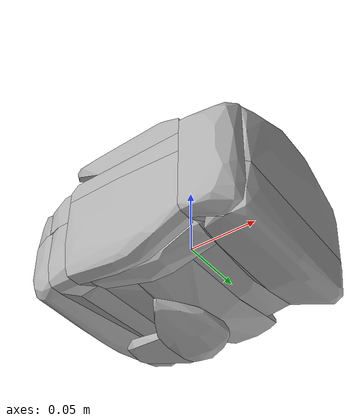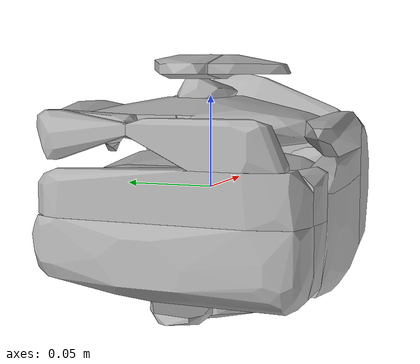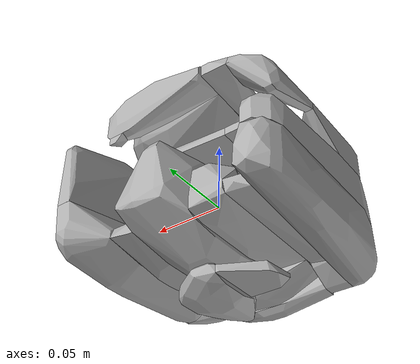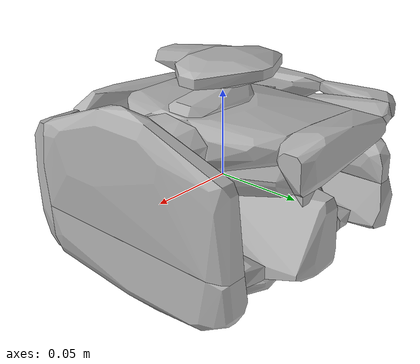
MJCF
<?xml version="1.0" ?>
<mujoco model="agod_23279">
  <asset>
    <material name="default_material" specular="0.5" shininess="0.25" rgba="0.7 0.7 0.7 1"/>
    <mesh name="convex_0_vis" file="visual/convex_0.obj" scale="1.0 1.0 1.0"/>
    <mesh name="convex_0_coll" file="collision/convex_0_coll.obj" scale="1.0 1.0 1.0"/>
    <mesh name="convex_1_vis" file="visual/convex_1.obj" scale="1.0 1.0 1.0"/>
    <mesh name="convex_1_coll" file="collision/convex_1_coll.obj" scale="1.0 1.0 1.0"/>
    <mesh name="convex_2_vis" file="visual/convex_2.obj" scale="1.0 1.0 1.0"/>
    <mesh name="convex_2_coll" file="collision/convex_2_coll.obj" scale="1.0 1.0 1.0"/>
    <mesh name="convex_3_vis" file="visual/convex_3.obj" scale="1.0 1.0 1.0"/>
    <mesh name="convex_3_coll" file="collision/convex_3_coll.obj" scale="1.0 1.0 1.0"/>
    <mesh name="convex_4_vis" file="visual/convex_4.obj" scale="1.0 1.0 1.0"/>
    <mesh name="convex_4_coll" file="collision/convex_4_coll.obj" scale="1.0 1.0 1.0"/>
    <mesh name="convex_5_vis" file="visual/convex_5.obj" scale="1.0 1.0 1.0"/>
    <mesh name="convex_5_coll" file="collision/convex_5_coll.obj" scale="1.0 1.0 1.0"/>
    <mesh name="convex_6_vis" file="visual/convex_6.obj" scale="1.0 1.0 1.0"/>
    <mesh name="convex_6_coll" file="collision/convex_6_coll.obj" scale="1.0 1.0 1.0"/>
    <mesh name="convex_7_vis" file="visual/convex_7.obj" scale="1.0 1.0 1.0"/>
    <mesh name="convex_7_coll" file="collision/convex_7_coll.obj" scale="1.0 1.0 1.0"/>
    <mesh name="convex_8_vis" file="visual/convex_8.obj" scale="1.0 1.0 1.0"/>
    <mesh name="convex_8_coll" file="collision/convex_8_coll.obj" scale="1.0 1.0 1.0"/>
    <mesh name="convex_9_vis" file="visual/convex_9.obj" scale="1.0 1.0 1.0"/>
    <mesh name="convex_9_coll" file="collision/convex_9_coll.obj" scale="1.0 1.0 1.0"/>
    <mesh name="convex_10_vis" file="visual/convex_10.obj" scale="1.0 1.0 1.0"/>
    <mesh name="convex_10_coll" file="collision/convex_10_coll.obj" scale="1.0 1.0 1.0"/>
    <mesh name="convex_11_vis" file="visual/convex_11.obj" scale="1.0 1.0 1.0"/>
    <mesh name="convex_11_coll" file="collision/convex_11_coll.obj" scale="1.0 1.0 1.0"/>
    <mesh name="convex_12_vis" file="visual/convex_12.obj" scale="1.0 1.0 1.0"/>
    <mesh name="convex_12_coll" file="collision/convex_12_coll.obj" scale="1.0 1.0 1.0"/>
    <mesh name="convex_13_vis" file="visual/convex_13.obj" scale="1.0 1.0 1.0"/>
    <mesh name="convex_13_coll" file="collision/convex_13_coll.obj" scale="1.0 1.0 1.0"/>
    <mesh name="convex_14_vis" file="visual/convex_14.obj" scale="1.0 1.0 1.0"/>
    <mesh name="convex_14_coll" file="collision/convex_14_coll.obj" scale="1.0 1.0 1.0"/>
    <mesh name="convex_15_vis" file="visual/convex_15.obj" scale="1.0 1.0 1.0"/>
    <mesh name="convex_15_coll" file="collision/convex_15_coll.obj" scale="1.0 1.0 1.0"/>
    <mesh name="convex_16_vis" file="visual/convex_16.obj" scale="1.0 1.0 1.0"/>
    <mesh name="convex_16_coll" file="collision/convex_16_coll.obj" scale="1.0 1.0 1.0"/>
    <mesh name="convex_17_vis" file="visual/convex_17.obj" scale="1.0 1.0 1.0"/>
    <mesh name="convex_17_coll" file="collision/convex_17_coll.obj" scale="1.0 1.0 1.0"/>
    <mesh name="convex_18_vis" file="visual/convex_18.obj" scale="1.0 1.0 1.0"/>
    <mesh name="convex_18_coll" file="collision/convex_18_coll.obj" scale="1.0 1.0 1.0"/>
    <mesh name="convex_19_vis" file="visual/convex_19.obj" scale="1.0 1.0 1.0"/>
    <mesh name="convex_19_coll" file="collision/convex_19_coll.obj" scale="1.0 1.0 1.0"/>
    <mesh name="convex_20_vis" file="visual/convex_20.obj" scale="1.0 1.0 1.0"/>
    <mesh name="convex_20_coll" file="collision/convex_20_coll.obj" scale="1.0 1.0 1.0"/>
    <mesh name="convex_21_vis" file="visual/convex_21.obj" scale="1.0 1.0 1.0"/>
    <mesh name="convex_21_coll" file="collision/convex_21_coll.obj" scale="1.0 1.0 1.0"/>
    <mesh name="convex_22_vis" file="visual/convex_22.obj" scale="1.0 1.0 1.0"/>
    <mesh name="convex_22_coll" file="collision/convex_22_coll.obj" scale="1.0 1.0 1.0"/>
    <mesh name="convex_23_vis" file="visual/convex_23.obj" scale="1.0 1.0 1.0"/>
    <mesh name="convex_23_coll" file="collision/convex_23_coll.obj" scale="1.0 1.0 1.0"/>
    <mesh name="convex_24_vis" file="visual/convex_24.obj" scale="1.0 1.0 1.0"/>
    <mesh name="convex_24_coll" file="collision/convex_24_coll.obj" scale="1.0 1.0 1.0"/>
    <mesh name="convex_25_vis" file="visual/convex_25.obj" scale="1.0 1.0 1.0"/>
    <mesh name="convex_25_coll" file="collision/convex_25_coll.obj" scale="1.0 1.0 1.0"/>
    <mesh name="convex_26_vis" file="visual/convex_26.obj" scale="1.0 1.0 1.0"/>
    <mesh name="convex_26_coll" file="collision/convex_26_coll.obj" scale="1.0 1.0 1.0"/>
    <mesh name="convex_27_vis" file="visual/convex_27.obj" scale="1.0 1.0 1.0"/>
    <mesh name="convex_27_coll" file="collision/convex_27_coll.obj" scale="1.0 1.0 1.0"/>
    <mesh name="convex_28_vis" file="visual/convex_28.obj" scale="1.0 1.0 1.0"/>
    <mesh name="convex_28_coll" file="collision/convex_28_coll.obj" scale="1.0 1.0 1.0"/>
    <mesh name="convex_29_vis" file="visual/convex_29.obj" scale="1.0 1.0 1.0"/>
    <mesh name="convex_29_coll" file="collision/convex_29_coll.obj" scale="1.0 1.0 1.0"/>
    <mesh name="convex_30_vis" file="visual/convex_30.obj" scale="1.0 1.0 1.0"/>
    <mesh name="convex_30_coll" file="collision/convex_30_coll.obj" scale="1.0 1.0 1.0"/>
    <mesh name="convex_31_vis" file="visual/convex_31.obj" scale="1.0 1.0 1.0"/>
    <mesh name="convex_31_coll" file="collision/convex_31_coll.obj" scale="1.0 1.0 1.0"/>
    <mesh name="convex_32_vis" file="visual/convex_32.obj" scale="1.0 1.0 1.0"/>
    <mesh name="convex_32_coll" file="collision/convex_32_coll.obj" scale="1.0 1.0 1.0"/>
    <mesh name="convex_33_vis" file="visual/convex_33.obj" scale="1.0 1.0 1.0"/>
    <mesh name="convex_33_coll" file="collision/convex_33_coll.obj" scale="1.0 1.0 1.0"/>
    <mesh name="convex_34_vis" file="visual/convex_34.obj" scale="1.0 1.0 1.0"/>
    <mesh name="convex_34_coll" file="collision/convex_34_coll.obj" scale="1.0 1.0 1.0"/>
    <mesh name="convex_35_vis" file="visual/convex_35.obj" scale="1.0 1.0 1.0"/>
    <mesh name="convex_35_coll" file="collision/convex_35_coll.obj" scale="1.0 1.0 1.0"/>
    <mesh name="convex_36_vis" file="visual/convex_36.obj" scale="1.0 1.0 1.0"/>
    <mesh name="convex_36_coll" file="collision/convex_36_coll.obj" scale="1.0 1.0 1.0"/>
  </asset>
  <worldbody>
    <body>
      <body name="object">
        <!-- Visual Geometry -->
        <!-- Collision Geometry -->
        <geom type="mesh" mesh="convex_0_vis" material="default_material" conaffinity="0" contype="0" group="1"/>
        <geom type="mesh" mesh="convex_0_coll" solimp="0.998 0.998 0.001" solref="0.001 1" density="100" friction="0.95 0.3 0.1" group="0" rgba="0.8 0.8 0.8 0.0"/>
        <geom type="mesh" mesh="convex_1_vis" material="default_material" conaffinity="0" contype="0" group="1"/>
        <geom type="mesh" mesh="convex_1_coll" solimp="0.998 0.998 0.001" solref="0.001 1" density="100" friction="0.95 0.3 0.1" group="0" rgba="0.8 0.8 0.8 0.0"/>
        <geom type="mesh" mesh="convex_2_vis" material="default_material" conaffinity="0" contype="0" group="1"/>
        <geom type="mesh" mesh="convex_2_coll" solimp="0.998 0.998 0.001" solref="0.001 1" density="100" friction="0.95 0.3 0.1" group="0" rgba="0.8 0.8 0.8 0.0"/>
        <geom type="mesh" mesh="convex_3_vis" material="default_material" conaffinity="0" contype="0" group="1"/>
        <geom type="mesh" mesh="convex_3_coll" solimp="0.998 0.998 0.001" solref="0.001 1" density="100" friction="0.95 0.3 0.1" group="0" rgba="0.8 0.8 0.8 0.0"/>
        <geom type="mesh" mesh="convex_4_vis" material="default_material" conaffinity="0" contype="0" group="1"/>
        <geom type="mesh" mesh="convex_4_coll" solimp="0.998 0.998 0.001" solref="0.001 1" density="100" friction="0.95 0.3 0.1" group="0" rgba="0.8 0.8 0.8 0.0"/>
        <geom type="mesh" mesh="convex_5_vis" material="default_material" conaffinity="0" contype="0" group="1"/>
        <geom type="mesh" mesh="convex_5_coll" solimp="0.998 0.998 0.001" solref="0.001 1" density="100" friction="0.95 0.3 0.1" group="0" rgba="0.8 0.8 0.8 0.0"/>
        <geom type="mesh" mesh="convex_6_vis" material="default_material" conaffinity="0" contype="0" group="1"/>
        <geom type="mesh" mesh="convex_6_coll" solimp="0.998 0.998 0.001" solref="0.001 1" density="100" friction="0.95 0.3 0.1" group="0" rgba="0.8 0.8 0.8 0.0"/>
        <geom type="mesh" mesh="convex_7_vis" material="default_material" conaffinity="0" contype="0" group="1"/>
        <geom type="mesh" mesh="convex_7_coll" solimp="0.998 0.998 0.001" solref="0.001 1" density="100" friction="0.95 0.3 0.1" group="0" rgba="0.8 0.8 0.8 0.0"/>
        <geom type="mesh" mesh="convex_8_vis" material="default_material" conaffinity="0" contype="0" group="1"/>
        <geom type="mesh" mesh="convex_8_coll" solimp="0.998 0.998 0.001" solref="0.001 1" density="100" friction="0.95 0.3 0.1" group="0" rgba="0.8 0.8 0.8 0.0"/>
        <geom type="mesh" mesh="convex_9_vis" material="default_material" conaffinity="0" contype="0" group="1"/>
        <geom type="mesh" mesh="convex_9_coll" solimp="0.998 0.998 0.001" solref="0.001 1" density="100" friction="0.95 0.3 0.1" group="0" rgba="0.8 0.8 0.8 0.0"/>
        <geom type="mesh" mesh="convex_10_vis" material="default_material" conaffinity="0" contype="0" group="1"/>
        <geom type="mesh" mesh="convex_10_coll" solimp="0.998 0.998 0.001" solref="0.001 1" density="100" friction="0.95 0.3 0.1" group="0" rgba="0.8 0.8 0.8 0.0"/>
        <geom type="mesh" mesh="convex_11_vis" material="default_material" conaffinity="0" contype="0" group="1"/>
        <geom type="mesh" mesh="convex_11_coll" solimp="0.998 0.998 0.001" solref="0.001 1" density="100" friction="0.95 0.3 0.1" group="0" rgba="0.8 0.8 0.8 0.0"/>
        <geom type="mesh" mesh="convex_12_vis" material="default_material" conaffinity="0" contype="0" group="1"/>
        <geom type="mesh" mesh="convex_12_coll" solimp="0.998 0.998 0.001" solref="0.001 1" density="100" friction="0.95 0.3 0.1" group="0" rgba="0.8 0.8 0.8 0.0"/>
        <geom type="mesh" mesh="convex_13_vis" material="default_material" conaffinity="0" contype="0" group="1"/>
        <geom type="mesh" mesh="convex_13_coll" solimp="0.998 0.998 0.001" solref="0.001 1" density="100" friction="0.95 0.3 0.1" group="0" rgba="0.8 0.8 0.8 0.0"/>
        <geom type="mesh" mesh="convex_14_vis" material="default_material" conaffinity="0" contype="0" group="1"/>
        <geom type="mesh" mesh="convex_14_coll" solimp="0.998 0.998 0.001" solref="0.001 1" density="100" friction="0.95 0.3 0.1" group="0" rgba="0.8 0.8 0.8 0.0"/>
        <geom type="mesh" mesh="convex_15_vis" material="default_material" conaffinity="0" contype="0" group="1"/>
        <geom type="mesh" mesh="convex_15_coll" solimp="0.998 0.998 0.001" solref="0.001 1" density="100" friction="0.95 0.3 0.1" group="0" rgba="0.8 0.8 0.8 0.0"/>
        <geom type="mesh" mesh="convex_16_vis" material="default_material" conaffinity="0" contype="0" group="1"/>
        <geom type="mesh" mesh="convex_16_coll" solimp="0.998 0.998 0.001" solref="0.001 1" density="100" friction="0.95 0.3 0.1" group="0" rgba="0.8 0.8 0.8 0.0"/>
        <geom type="mesh" mesh="convex_17_vis" material="default_material" conaffinity="0" contype="0" group="1"/>
        <geom type="mesh" mesh="convex_17_coll" solimp="0.998 0.998 0.001" solref="0.001 1" density="100" friction="0.95 0.3 0.1" group="0" rgba="0.8 0.8 0.8 0.0"/>
        <geom type="mesh" mesh="convex_18_vis" material="default_material" conaffinity="0" contype="0" group="1"/>
        <geom type="mesh" mesh="convex_18_coll" solimp="0.998 0.998 0.001" solref="0.001 1" density="100" friction="0.95 0.3 0.1" group="0" rgba="0.8 0.8 0.8 0.0"/>
        <geom type="mesh" mesh="convex_19_vis" material="default_material" conaffinity="0" contype="0" group="1"/>
        <geom type="mesh" mesh="convex_19_coll" solimp="0.998 0.998 0.001" solref="0.001 1" density="100" friction="0.95 0.3 0.1" group="0" rgba="0.8 0.8 0.8 0.0"/>
        <geom type="mesh" mesh="convex_20_vis" material="default_material" conaffinity="0" contype="0" group="1"/>
        <geom type="mesh" mesh="convex_20_coll" solimp="0.998 0.998 0.001" solref="0.001 1" density="100" friction="0.95 0.3 0.1" group="0" rgba="0.8 0.8 0.8 0.0"/>
        <geom type="mesh" mesh="convex_21_vis" material="default_material" conaffinity="0" contype="0" group="1"/>
        <geom type="mesh" mesh="convex_21_coll" solimp="0.998 0.998 0.001" solref="0.001 1" density="100" friction="0.95 0.3 0.1" group="0" rgba="0.8 0.8 0.8 0.0"/>
        <geom type="mesh" mesh="convex_22_vis" material="default_material" conaffinity="0" contype="0" group="1"/>
        <geom type="mesh" mesh="convex_22_coll" solimp="0.998 0.998 0.001" solref="0.001 1" density="100" friction="0.95 0.3 0.1" group="0" rgba="0.8 0.8 0.8 0.0"/>
        <geom type="mesh" mesh="convex_23_vis" material="default_material" conaffinity="0" contype="0" group="1"/>
        <geom type="mesh" mesh="convex_23_coll" solimp="0.998 0.998 0.001" solref="0.001 1" density="100" friction="0.95 0.3 0.1" group="0" rgba="0.8 0.8 0.8 0.0"/>
        <geom type="mesh" mesh="convex_24_vis" material="default_material" conaffinity="0" contype="0" group="1"/>
        <geom type="mesh" mesh="convex_24_coll" solimp="0.998 0.998 0.001" solref="0.001 1" density="100" friction="0.95 0.3 0.1" group="0" rgba="0.8 0.8 0.8 0.0"/>
        <geom type="mesh" mesh="convex_25_vis" material="default_material" conaffinity="0" contype="0" group="1"/>
        <geom type="mesh" mesh="convex_25_coll" solimp="0.998 0.998 0.001" solref="0.001 1" density="100" friction="0.95 0.3 0.1" group="0" rgba="0.8 0.8 0.8 0.0"/>
        <geom type="mesh" mesh="convex_26_vis" material="default_material" conaffinity="0" contype="0" group="1"/>
        <geom type="mesh" mesh="convex_26_coll" solimp="0.998 0.998 0.001" solref="0.001 1" density="100" friction="0.95 0.3 0.1" group="0" rgba="0.8 0.8 0.8 0.0"/>
        <geom type="mesh" mesh="convex_27_vis" material="default_material" conaffinity="0" contype="0" group="1"/>
        <geom type="mesh" mesh="convex_27_coll" solimp="0.998 0.998 0.001" solref="0.001 1" density="100" friction="0.95 0.3 0.1" group="0" rgba="0.8 0.8 0.8 0.0"/>
        <geom type="mesh" mesh="convex_28_vis" material="default_material" conaffinity="0" contype="0" group="1"/>
        <geom type="mesh" mesh="convex_28_coll" solimp="0.998 0.998 0.001" solref="0.001 1" density="100" friction="0.95 0.3 0.1" group="0" rgba="0.8 0.8 0.8 0.0"/>
        <geom type="mesh" mesh="convex_29_vis" material="default_material" conaffinity="0" contype="0" group="1"/>
        <geom type="mesh" mesh="convex_29_coll" solimp="0.998 0.998 0.001" solref="0.001 1" density="100" friction="0.95 0.3 0.1" group="0" rgba="0.8 0.8 0.8 0.0"/>
        <geom type="mesh" mesh="convex_30_vis" material="default_material" conaffinity="0" contype="0" group="1"/>
        <geom type="mesh" mesh="convex_30_coll" solimp="0.998 0.998 0.001" solref="0.001 1" density="100" friction="0.95 0.3 0.1" group="0" rgba="0.8 0.8 0.8 0.0"/>
        <geom type="mesh" mesh="convex_31_vis" material="default_material" conaffinity="0" contype="0" group="1"/>
        <geom type="mesh" mesh="convex_31_coll" solimp="0.998 0.998 0.001" solref="0.001 1" density="100" friction="0.95 0.3 0.1" group="0" rgba="0.8 0.8 0.8 0.0"/>
        <geom type="mesh" mesh="convex_32_vis" material="default_material" conaffinity="0" contype="0" group="1"/>
        <geom type="mesh" mesh="convex_32_coll" solimp="0.998 0.998 0.001" solref="0.001 1" density="100" friction="0.95 0.3 0.1" group="0" rgba="0.8 0.8 0.8 0.0"/>
        <geom type="mesh" mesh="convex_33_vis" material="default_material" conaffinity="0" contype="0" group="1"/>
        <geom type="mesh" mesh="convex_33_coll" solimp="0.998 0.998 0.001" solref="0.001 1" density="100" friction="0.95 0.3 0.1" group="0" rgba="0.8 0.8 0.8 0.0"/>
        <geom type="mesh" mesh="convex_34_vis" material="default_material" conaffinity="0" contype="0" group="1"/>
        <geom type="mesh" mesh="convex_34_coll" solimp="0.998 0.998 0.001" solref="0.001 1" density="100" friction="0.95 0.3 0.1" group="0" rgba="0.8 0.8 0.8 0.0"/>
        <geom type="mesh" mesh="convex_35_vis" material="default_material" conaffinity="0" contype="0" group="1"/>
        <geom type="mesh" mesh="convex_35_coll" solimp="0.998 0.998 0.001" solref="0.001 1" density="100" friction="0.95 0.3 0.1" group="0" rgba="0.8 0.8 0.8 0.0"/>
        <geom type="mesh" mesh="convex_36_vis" material="default_material" conaffinity="0" contype="0" group="1"/>
        <geom type="mesh" mesh="convex_36_coll" solimp="0.998 0.998 0.001" solref="0.001 1" density="100" friction="0.95 0.3 0.1" group="0" rgba="0.8 0.8 0.8 0.0"/>
      </body>
      <site rgba="0 0 0 0" size="0.005" name="bottom_site" pos="0.00000 0.00000 -0.07197"/>
      <site rgba="0 0 0 0" size="0.005" name="top_site" pos="0.00000 0.00000 0.07197"/>
      <site rgba="0 0 0 0" size="0.005" name="horizontal_radius_site" pos="0.08225 0.07711 0.00000"/>
    </body>
  </worldbody>
</mujoco>
